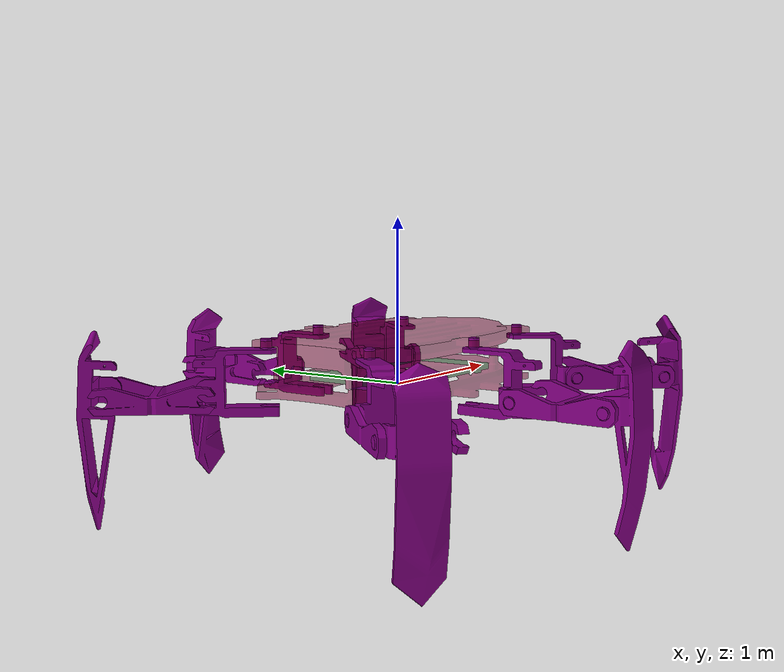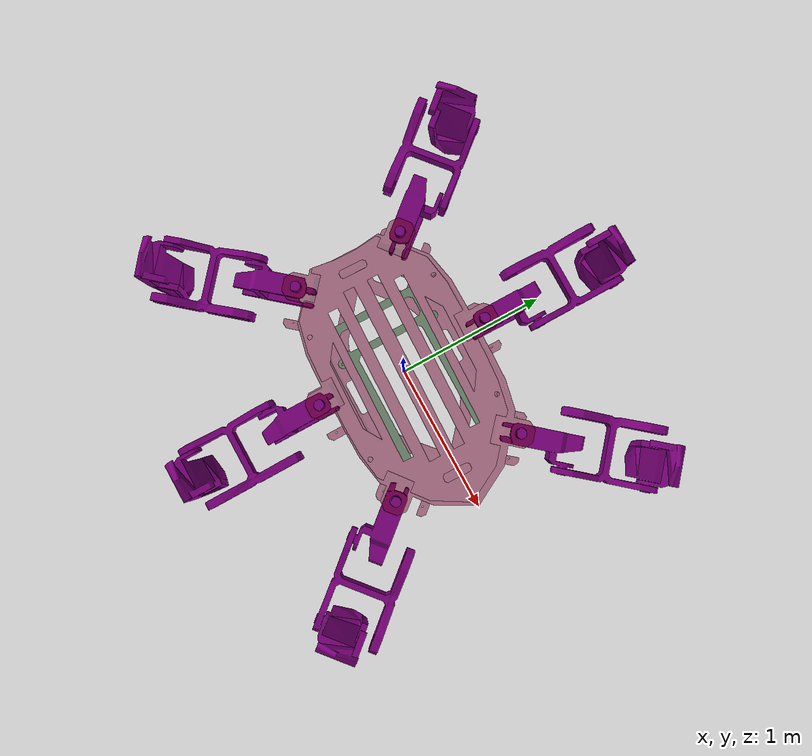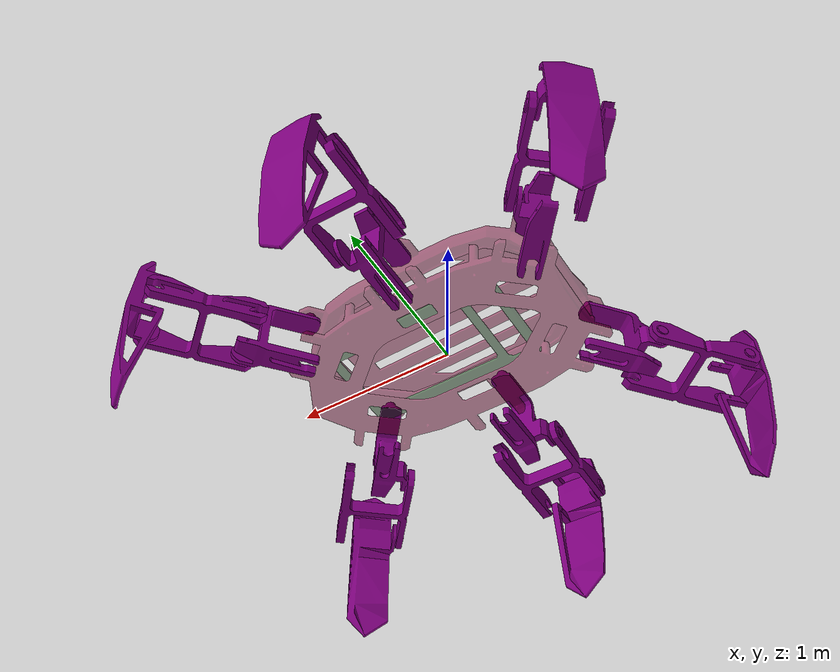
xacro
<?xml version="1.0"?>
<robot xmlns:xacro="http://www.ros.org/wiki/xacro" name="hexapod">
    <xacro:include filename="$(find hex)/models/hexapod_new/xacro/macro.intertial.xacro"/>
    <xacro:include filename="$(find hex)/models/hexapod_new/xacro/propertys.xacro"/>
    <xacro:include filename="$(find hex)/models/hexapod_new/xacro/chasis.urdf.xacro"/>
    <xacro:include filename="$(find hex)/models/hexapod_new/xacro/macro.leg.urdf.xacro"/>
    <xacro:leg
    legnumber="1"
    xyz="0.7 0.435 0.05"
    rpy="0 0 2.44"/>

     <xacro:leg
    legnumber="2"
    xyz="-0.03 0.59 0.05"
    rpy="0 0 3.14"/>

    <xacro:leg
    legnumber="3"
    xyz="-0.76 0.39 0.05"
    rpy="0 0 3.84"/>

    <xacro:leg
    legnumber="4"
    xyz="-0.77 -0.345 0.05"
    rpy="0 0 -0.7"/>

    <xacro:leg
    legnumber="5"
    xyz="-0.054 -0.565 0.05"
    rpy="0 0 0"/>

    <xacro:leg
    legnumber="6"
    xyz="0.69 -0.435 0.05"
    rpy="0 0 0.7"/>
</robot>

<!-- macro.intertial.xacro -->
<robot xmlns:xacro="http://www.ros.org/wiki/xacro">

  <xacro:macro name="box_inertia" params="m x y z">
      <mass value="${m}"/>
      <inertia
        ixx="${(m*(y*y+z*z))/12}" ixy = "0" ixz = "0"
        iyy="${(m*(x*x+y*y))/12}" iyz = "0"
        izz="${(m*(x*x+z*z))/12}"
      />
  </xacro:macro>

  <xacro:macro name="cylinder_intertia" params="m r h">
    <mass value="${m}"/>
    <inertia
      ixx="${m*(3*r*r+h*h)/6}" ixy = "0" ixz = "0"
      iyy="${m*(3*r*r+h*h)/6}" iyz = "0"
      izz="${m*r*r/2}"
    />
  </xacro:macro>

  <xacro:macro name="sphere_intertia" params="m r">
    <mass value="${m}"/>
    <inertia
      ixx="${2*(m*r*r)/5}" ixy = "0" ixz = "0"
      iyy="${2*(m*r*r)/5}" iyz = "0"
      izz="${2*(m*r*r)/5}"
    />
  </xacro:macro>

</robot>

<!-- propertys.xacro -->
<robot xmlns:xacro="http://www.ros.org/wiki/xacro">

    <!-- Mass -->
    <xacro:property name="cover_top_mass" value="0.05"/>
    <xacro:property name="body_top_mass" value="0.2"/>
    <xacro:property name="board_bracket_mass" value="0.3"/>
    <xacro:property name="body_bottom_mass" value="0.2"/>
    <xacro:property name="coxa_mass" value="0.2"/>
    <xacro:property name="femur_mass" value="0.2"/>
    <xacro:property name="tibia_mass" value="0.2"/>

    <!-- Leg Parameters -->

     <!-- Base to coxa joints limits -->
    <xacro:property name="lower_bc" value="-0.707"/>
    <xacro:property name="upper_bc" value="0.707"/>
    <!-- Coxa to femur joints limits -->
    <xacro:property name="lower_cf" value="-0.707"/>
    <xacro:property name="upper_cf" value="0.707"/>
    <!-- Femur to tibia joints limits -->
    <xacro:property name="lower_ft" value="0.707"/>
    <xacro:property name="upper_ft" value="2.3"/>

    <!-- joints stiffness -->
    <xacro:property name="base_coxa_damping" value="60.0"/>
    <xacro:property name="coxa_femur_damping" value="60.0"/>
    <xacro:property name="femur_tibia_damping" value="0.7"/>
    <xacro:property name="base_coxa_friction" value="4.0"/>
    <xacro:property name="coxa_femur_friction" value="4.0"/>
    <xacro:property name="femur_tibia_friction" value="0.1"/>

    <!-- Joint effor and velocity -->
    <xacro:property name="base_coxa_effort" value="50.0"/>
    <xacro:property name="coxa_femur_effort" value="200.0"/>
    <xacro:property name="femur_tibia_effort" value="200.0"/>
    <xacro:property name="base_coxa_velocity" value="1"/>
    <xacro:property name="coxa_femur_velocity" value="1"/>
    <xacro:property name="femur_tibia_velocity" value="1"/>

</robot>

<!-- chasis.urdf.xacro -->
<robot xmlns:xacro="http://www.ros.org/wiki/xacro" name="hexapod">

    <material name="body">
        <color rgba="0.5 0 0.2 0.5"/>
    </material>

    <link name="cover_top">
        <visual>
            <geometry>
                <mesh filename="package://hex/models/hexapod_new/meshes/new_meshe/cover_top.stl" scale="0.01 0.01 0.01"/>
            </geometry>
            <origin xyz="-0.02 -0 0"/>
            <material name="body"/>
        </visual>
        <inertial>
            <xacro:box_inertia m="${cover_top_mass}" x="1.6" y="1" z="0.1"/>
        </inertial>
        <collision>
            <geometry>
                <mesh filename="package://hex/models/hexapod_new/meshes/new_meshe/cover_top.stl" scale="0.01 0.01 0.01"/>
            <origin xyz="-0.02 -0 0"/>
            </geometry>
        </collision>
    </link>

    <joint name="body_top_cover_top_joint" type="fixed">
        <parent link="body_top"/>
        <child link="cover_top"/>
        <origin rpy="0.0 0.0 -0.05" xyz="0.0 -0.115 0.31"/>
    </joint>

    <link name="body_top">
        <visual>
        <geometry>
            <mesh filename="package://hex/models/hexapod_new/meshes/new_meshe/body_top.stl" scale="0.01 0.01 0.01"/>
        </geometry>
        <origin xyz="0 -0.42 0"/>
        <material name="body"/>
        </visual>
        <inertial>
            <xacro:box_inertia m="${body_top_mass}" x="1.6" y="1" z="0.1"/>
        </inertial>
        <collision>
        <geometry>
            <mesh filename="package://hex/models/hexapod_new/meshes/new_meshe/body_top.stl" scale="0.01 0.01 0.01"/>
            <origin xyz="0 -0.42 0"/>
        </geometry>
        </collision>
    </link>

    <joint name="body_top_body_bottom_joint" type="fixed">
        <parent link="body_bottom"/>
        <child link="body_top"/>
        <origin rpy="0.0 0.0 0.0" xyz="0.0 0.02 0"/>
    </joint>

    <link name="board_bracket">
        <visual>
        <geometry>
            <mesh filename="package://hex/models/hexapod_new/meshes/new_meshe/board_bracket.stl" scale="0.01 0.01 0.01"/>
        </geometry>
        <origin xyz="0 0 0"/>
        <material name="green">
            <color rgba="0 0.2 0 0.5"/>
        </material>
        </visual>
        <inertial>
            <xacro:box_inertia m="${board_bracket_mass}" x="1.1" y="0.6" z="0.06"/>
        </inertial>
        <collision>
        <geometry>
            <mesh filename="package://hex/models/hexapod_new/meshes/new_meshe/board_bracket.stl" scale="0.01 0.01 0.01"/>
        <origin xyz="0 0 0"/>
        </geometry>
        </collision>
    </link>

    <joint name="base_bottom_bracket_board" type="fixed">
        <parent link="body_bottom"/>
        <child link="board_bracket"/>
       <origin rpy="0.0 0.0 0.0" xyz="0 -0.03 0"/>
    </joint>

   <link name="body_bottom">
    <visual>
      <geometry>
        <mesh filename="package://hex/models/hexapod_new/meshes/new_meshe/body_bottom.stl" scale="0.01 0.01 0.01"/>
      </geometry>
      <origin xyz="0.0 -0.425 0"/>
        <material name="body"/>
    </visual>
    <inertial>
      <xacro:box_inertia m="${body_bottom_mass}" x="1.6" y="1" z="0.1"/>
    </inertial>
    <collision>
      <geometry>
        <mesh filename="package://hex/models/hexapod_new/meshes/new_meshe/body_bottom.stl" scale="0.01 0.01 0.01"/>
        <origin xyz="0.0 -0.425 0"/>
      </geometry>
    </collision>
  </link>

  <link name="base_footprint"/>
    <joint name="base_footprint_base_bottom_joint" type="fixed">
        <parent link="base_footprint"/>
        <child link="body_bottom"/>
        <origin xyz="0.0 0.0 0.0" rpy="0.0 0.0 0.0"/>
    </joint>
</robot>

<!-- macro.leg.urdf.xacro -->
<robot xmlns:xacro="http://www.ros.org/wiki/xacro">

    <xacro:include filename="$(find hex)/models/hexapod_new/xacro/macro.transmission.xacro"/>
    <xacro:include filename="$(find hex)/models/hexapod_new/xacro/macro.internal_config.xacro"/>

    <material name="coxa">
        <color rgba="0.5 0 0.5 1"/>
    </material>

    <material name="femur">
        <color rgba="0.5 0 0.5 1"/>

    </material>

    <material name="tibia">
        <color rgba="0.5 0 0.5 1"/>
    </material>

    <xacro:macro name="leg" params="legnumber xyz rpy">

        <link name="coxa_${legnumber}">
            <visual>
            <geometry>
                <mesh filename="package://hex/models/hexapod_new/meshes/new_meshe/coxa.stl" scale="0.01 0.01 0.01"/>
            </geometry>
            <origin xyz="0 0 0"/>
            <material name="coxa"/>
            </visual>
            <inertial>
              <xacro:box_inertia m="${coxa_mass}" x="0.15" y="0.5" z="0.5"/>
            </inertial>
            <collision>
            <geometry>
                <mesh filename="package://hex/models/hexapod_new/meshes/new_meshe/coxa.stl" scale="0.01 0.01 0.01"/>
                <origin xyz="0 0 0"/>
            </geometry>
            </collision>
        </link>

        <link name="femur_${legnumber}">
            <visual>
            <geometry>
                <mesh filename="package://hex/models/hexapod_new/meshes/new_meshe/femur.stl" scale="0.01 0.01 0.01"/>
            </geometry>
            <origin xyz="0 0 0"/>
            <material name="femur"/>
            </visual>
            <inertial>
                 <xacro:box_inertia m="${femur_mass}" x="0.45" y="0.72" z="0.17"/>
            </inertial>
            <collision>
            <geometry>
                <mesh filename="package://hex/models/hexapod_new/meshes/new_meshe/femur.stl" scale="0.01 0.01 0.01"/>
                <origin xyz="0 0 0"/>
            </geometry>
            </collision>
        </link>

        <link name="tibia_${legnumber}">
            <visual>
            <geometry>
                <mesh filename="package://hex/models/hexapod_new/meshes/new_meshe/tibia.stl" scale="0.01 0.01 0.01"/>
            </geometry>
            <origin xyz="0 0 0"/>
            <material name="tibia"/>
            </visual>
            <inertial>
                <xacro:box_inertia m="${femur_mass}" x="0.3" y="1.15" z="0.22"/>
            </inertial>
            <collision>
            <geometry>
                <mesh filename="package://hex/models/hexapod_new/meshes/new_meshe/tibia.stl" scale="0.01 0.01 0.01"/>
                <origin xyz="0 0 0"/>
            </geometry>
            </collision>
        </link>

        <joint name="base_coxa_joint_${legnumber}" type="revolute">
            <parent link="body_bottom"/>
            <child link="coxa_${legnumber}"/>
            <origin rpy="${rpy}" xyz="${xyz}"/>
            <limit effort="${base_coxa_effort}" lower="${lower_bc}" upper="${upper_bc}" velocity="${base_coxa_velocity}"/>
            <axis xyz="0 0 1"/>
            <dynamics damping="${base_coxa_damping}" friction="${base_coxa_friction}"/>
        </joint>

        <joint name="coxa_femur_joint_${legnumber}" type="revolute">
            <parent link="coxa_${legnumber}"/>
            <child link="femur_${legnumber}"/>
            <origin rpy="0.0 0.0 0.0" xyz="0.09 -0.345 -0.04"/>
            <limit effort="${coxa_femur_effort}" lower="${lower_cf}" upper="${upper_cf}" velocity="${coxa_femur_velocity}"/>
            <axis xyz="1 0 0"/>
            <dynamics damping="${coxa_femur_damping}" friction="${coxa_femur_friction}"/>
        </joint>

        <joint name="femur_tibia_joint_${legnumber}" type="revolute">
            <parent link="femur_${legnumber}"/>
            <child link="tibia_${legnumber}"/>
            <origin rpy="0 0.0 0.0" xyz="-0.035 -0.555 0.0"/>
            <limit effort="${femur_tibia_effort}" lower="${lower_ft}" upper="${upper_ft}" velocity="${femur_tibia_velocity}"/>
            <axis xyz="1 0 0"/>
            <dynamics damping="${femur_tibia_damping}" friction="${femur_tibia_friction}"/>
        </joint>

    	<xacro:leg_transmissions legnumber="${legnumber}"/>
        <xacro:dsr_config_coeff legnumber="${legnumber}"/>
    </xacro:macro>

</robot>
